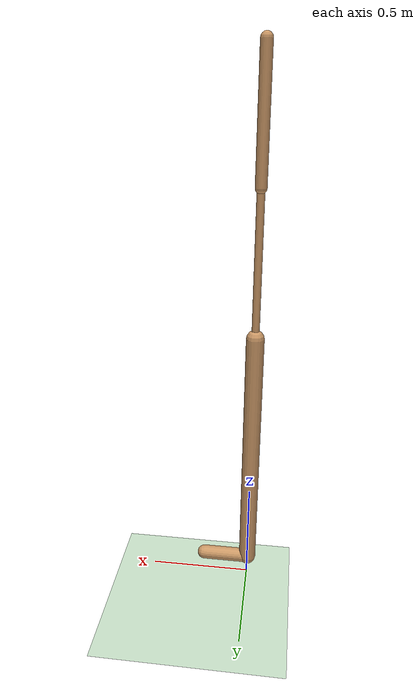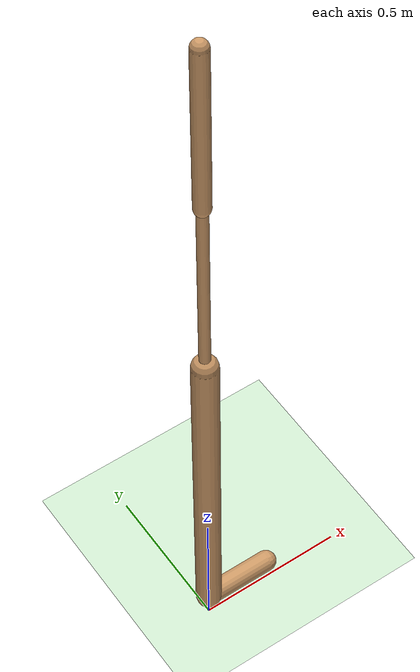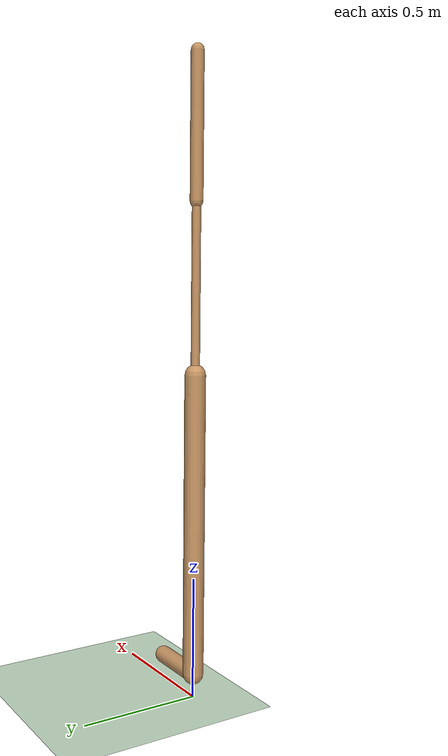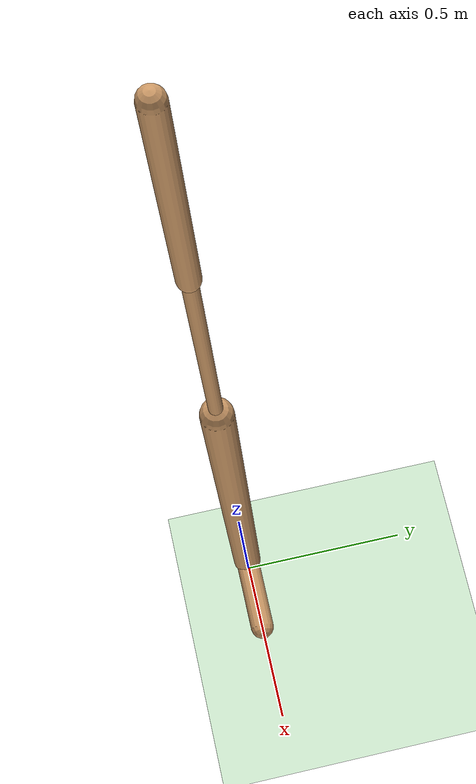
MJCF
<mujoco model="walker2d">
  <compiler angle="degree" inertiafromgeom="true" />
  <default>
    <joint armature="0.01" damping=".1" limited="true" />
    <geom conaffinity="0" condim="3" contype="1" density="1000" friction=".7 .1 .1" rgba="0.8 0.6 .4 1" />
  </default>
  <option integrator="RK4" timestep="0.002" />
  <worldbody>
    <light cutoff="100" diffuse="1 1 1" dir="-0 0 -1.3" directional="true" exponent="1" pos="0 0 1.3" specular=".1 .1 .1" />
    <geom conaffinity="1" condim="3" name="floor" pos="0 0 0" rgba="0.8 0.9 0.8 1" size="40 40 40" type="plane" material="MatPlane" />
    <body name="torso" pos="0 0 2.2902713775634767">
      <camera name="track" mode="trackcom" pos="0 -5 -1.25" xyaxes="1 0 0 0 0 1" />
      <joint armature="0" axis="1 0 0" damping="0" limited="false" name="rootx" pos="0 0 -1.25" stiffness="0" type="slide" />
      <joint armature="0" axis="0 0 1" damping="0" limited="false" name="rootz" pos="0 0 -1.25" ref="1.25" stiffness="0" type="slide" />
      <joint armature="0" axis="0 1 0" damping="0" limited="false" name="rooty" pos="0 0 0" stiffness="0" type="hinge" />
      <geom friction="0.9" name="torso_geom" size="0.025910019874572754 0.28193938732147217" type="capsule" />
      <body name="thigh" pos="0 0 -0.28193938732147217">
        <joint axis="0 -1 0" name="thigh_joint" pos="0 0 0" range="-150 0" type="hinge" />
        <site name="torso_thigh_site" pos="0 0 0" size="0.01" type="sphere" rgba="1 0 0 0.5" />
        <geom friction="0.9" pos="0 0 -0.3371219038963318" name="thigh_geom" size="0.017710989341139793 0.3371219038963318" type="capsule" />
        <body name="leg" pos="0 0 -1.291287899017334">
          <joint axis="0 -1 0" name="leg_joint" pos="0 0 0.6170440912246704" range="-150 0" type="hinge" />
          <site name="thigh_leg_site" pos="0 0 0.25" size="0.01" type="sphere" rgba="1 0 0 0.5" />
          <geom friction="0.9" name="leg_geom" size="0.04213569313287735 0.6170440912246704" type="capsule" />
          <body name="foot" pos="0.2277016043663025 0 -0.7170440912246704">
            <joint axis="0 -1 0" name="foot_joint" pos="-0.2277016043663025 0 0.1" range="-45 45" type="hinge" />
            <site name="leg_foot_site" pos="-0.2 0 0.1" size="0.01" type="sphere" rgba="1 0 0 0.5" />
            <geom friction="0.9" pos="-0.11385080218315125 0 0.1" quat="0.70710678118654757 0 -0.70710678118654746 0" name="foot_geom" size="0.03556421026587486 0.11385080218315125" type="capsule" />
          </body>
        </body>
      </body>

      <body name="thigh_left" pos="0 0 -0.28193938732147217">
        <joint axis="0 -1 0" name="thigh_left_joint" pos="0 0 0" range="-150 0" type="hinge" />
        <site name="torso_thigh_left_site" pos="0 0 0" size="0.01" type="sphere" rgba="1 0 0 0.5" />
        <geom friction="0.9" name="thigh_left_geom" rgba=".7 .3 .6 1" size="0.017710989341139793 0.3371219038963318" pos="0 0 -0.3371219038963318" type="capsule" />
        <body name="leg_left" pos="0 0 -1.291287899017334">
          <joint axis="0 -1 0" name="leg_left_joint" pos="0 0 0.6170440912246704" range="-150 0" type="hinge" />
          <site name="thigh_leg_left_site" pos="0 0 0.25" size="0.01" type="sphere" rgba="1 0 0 0.5" />
          <geom friction="0.9" name="leg_left_geom" rgba=".7 .3 .6 1" size="0.04213569313287735 0.6170440912246704" type="capsule" />
          <body name="foot_left" pos="0.2277016043663025 0 -0.7170440912246704">
            <joint axis="0 -1 0" name="foot_left_joint" pos="-0.2277016043663025 0 0.1" range="-45 45" type="hinge" />
            <site name="leg_foot_left_site" pos="-0.2 0 0.1" size="0.01" type="sphere" rgba="1 0 0 0.5" />
            <geom friction="1.9" name="foot_left_geom" rgba=".7 .3 .6 1" size="0.03556421026587486 0.11385080218315125" pos="-0.11385080218315125 0 0.1" type="capsule" quat="0.70710678118654757 0 -0.70710678118654746 0" />
          </body>
        </body>
      </body>
    </body>
  </worldbody>
  <actuator>

    <motor ctrllimited="true" ctrlrange="-1.0 1.0" gear="18.799664008840278" joint="thigh_joint" />
    <motor ctrllimited="true" ctrlrange="-1.0 1.0" gear="273.8775861437432" joint="leg_joint" />
    <motor ctrllimited="true" ctrlrange="-1.0 1.0" gear="39.99999460088202" joint="foot_joint" />
    <motor ctrllimited="true" ctrlrange="-1.0 1.0" gear="18.799664008840278" joint="thigh_left_joint" />
    <motor ctrllimited="true" ctrlrange="-1.0 1.0" gear="273.8775861437432" joint="leg_left_joint" />
    <motor ctrllimited="true" ctrlrange="-1.0 1.0" gear="39.99999460088202" joint="foot_left_joint" />

  </actuator>
    <asset>
        <texture type="skybox" builtin="gradient" rgb1=".4 .5 .6" rgb2="0 0 0" width="100" height="100" />
        <texture builtin="flat" height="1278" mark="cross" markrgb="1 1 1" name="texgeom" random="0.01" rgb1="0.8 0.6 0.4" rgb2="0.8 0.6 0.4" type="cube" width="127" />
        <texture builtin="checker" height="100" name="texplane" rgb1="0 0 0" rgb2="0.8 0.8 0.8" type="2d" width="100" />
        <material name="MatPlane" reflectance="0.5" shininess="1" specular="1" texrepeat="60 60" texture="texplane" />
        <material name="geom" texture="texgeom" texuniform="true" />
    </asset>

  <sensor>
    <force site="torso_thigh_site" name="torso_thigh_sensor" />
    <force site="thigh_leg_site" name="thigh_leg_sensor" />
    <force site="leg_foot_site" name="leg_foot_sensor" />
    <force site="torso_thigh_left_site" name="torso_thigh_left_sensor" />
    <force site="thigh_leg_left_site" name="thigh_leg_left_sensor" />
    <force site="leg_foot_left_site" name="leg_foot_left_sensor" />
  </sensor>
</mujoco>
